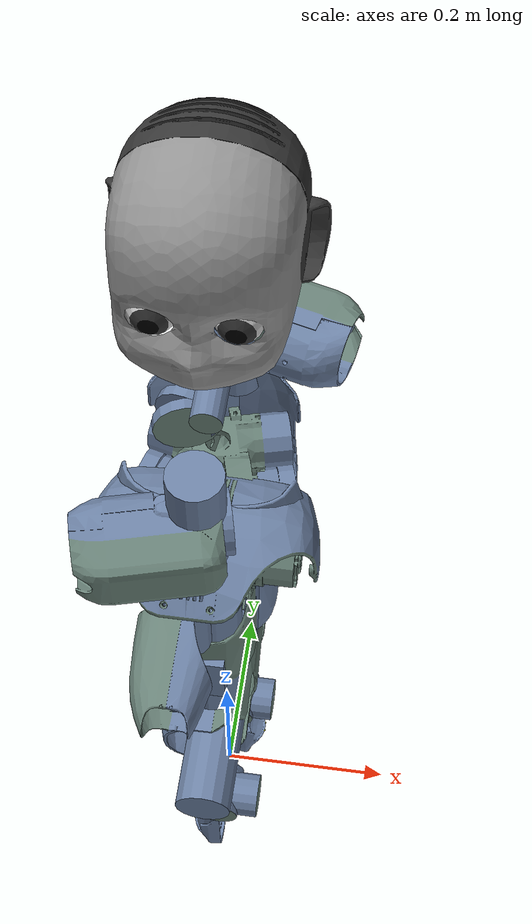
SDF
<sdf version='1.5'>
  <model name='iCub (no FT)'>
    <pose>0 0 0.6 0 0 3.14</pose>
    <link name='root_link'>
      <pose>0 0 0 0 -0 0</pose>
      <inertial>
        <pose>0 0 0 0 -0 0</pose>
        <mass>4.72</mass>
        <inertia>
          <ixx>0.01</ixx>
          <ixy>0</ixy>
          <ixz>0</ixz>
          <iyy>0.01</iyy>
          <iyz>0</iyz>
          <izz>0.01</izz>
        </inertia>
      </inertial>
      <collision name='root_link_collision'>
        <pose>0 0 0 0 -0 0</pose>
        <geometry>
          <mesh>
            <scale>1 1 1</scale>
            <uri>model://icub/meshes/collision/icub_simple_collision_root_link.dae</uri>
          </mesh>
        </geometry>
      </collision>
      <visual name='root_link_visual'>
        <pose>0 0 0 0 -0 0</pose>
        <geometry>
          <mesh>
            <scale>1 1 1</scale>
            <uri>model://icub/meshes/visual/icub_root_link.dae</uri>
          </mesh>
        </geometry>
      </visual>
    </link>
    <link name='l_hip_1'>
      <pose>0 -0.0681 -0.1199 2.65359e-06 1.57079 3.14159</pose>
      <inertial>
        <pose>0 -0.0782 0 0 -0 0</pose>
        <mass>0.754</mass>
        <inertia>
          <ixx>0.01</ixx>
          <ixy>2.059e-06</ixy>
          <ixz>1.451e-06</ixz>
          <iyy>0.01</iyy>
          <iyz>1.545e-06</iyz>
          <izz>0.01</izz>
        </inertia>
      </inertial>
      <collision name='l_hip_1_collision'>
        <pose>0 0 0 -0.785403 1.57079 -2.35619</pose>
        <geometry>
          <mesh>
            <scale>1 1 1</scale>
            <uri>model://icub/meshes/collision/icub_simple_collision_l_hip_1.dae</uri>
          </mesh>
        </geometry>
      </collision>
      <visual name='l_hip_1_visual'>
        <pose>0 0 0 -0.785403 1.57079 -2.35619</pose>
        <geometry>
          <mesh>
            <scale>1 1 1</scale>
            <uri>model://icub/meshes/visual/icub_l_hip_1.dae</uri>
          </mesh>
        </geometry>
      </visual>
    </link>
    <joint name='l_hip_pitch' type='revolute'>
      <child>l_hip_1</child>
      <parent>root_link</parent>
      <axis>
        <xyz>2.65359e-06 1 -9.74718e-12</xyz>
        <limit>
          <lower>-0.767945</lower>
          <upper>2.30383</upper>
          <effort>84</effort>
          <velocity>100</velocity>
        </limit>
        <dynamics>
          <damping>1</damping>
          <friction>0</friction>
          <spring_reference>0</spring_reference>
          <spring_stiffness>0</spring_stiffness>
        </dynamics>
        <use_parent_model_frame>1</use_parent_model_frame>
      </axis>
    </joint>
    <link name='l_hip_2'>
      <pose>0 -0.0681 -0.1199 3.14159 -7.34641e-06 3.14159</pose>
      <inertial>
        <pose>0 0 0.0362088 0 -0 0</pose>
        <mass>0.626</mass>
        <inertia>
          <ixx>0.0201092</ixx>
          <ixy>-7.4e-08</ixy>
          <ixz>1.0835e-05</ixz>
          <iyy>0.0201092</iyy>
          <iyz>-6.2e-08</iyz>
          <izz>0.02</izz>
        </inertia>
      </inertial>
      <collision name='l_hip_2_collision'>
        <pose>0 0 0 0.785363 -1.57079 2.35623</pose>
        <geometry>
          <mesh>
            <scale>1 1 1</scale>
            <uri>model://icub/meshes/collision/icub_simple_collision_l_hip_2.dae</uri>
          </mesh>
        </geometry>
      </collision>
      <visual name='l_hip_2_visual'>
        <pose>0 0 0 0.785363 -1.57079 2.35623</pose>
        <geometry>
          <mesh>
            <scale>1 1 1</scale>
            <uri>model://icub/meshes/visual/icub_l_hip_2.dae</uri>
          </mesh>
        </geometry>
      </visual>
    </link>
    <joint name='l_hip_roll' type='revolute'>
      <child>l_hip_2</child>
      <parent>l_hip_1</parent>
      <axis>
        <xyz>-1 2.65359e-06 7.34641e-06</xyz>
        <limit>
          <lower>-2.07694</lower>
          <upper>0.296706</upper>
          <effort>84</effort>
          <velocity>100</velocity>
        </limit>
        <dynamics>
          <damping>1</damping>
          <friction>0</friction>
          <spring_reference>0</spring_reference>
          <spring_stiffness>0</spring_stiffness>
        </dynamics>
        <use_parent_model_frame>1</use_parent_model_frame>
      </axis>
    </joint>
    <link name='l_upper_leg'>
      <pose>0 -0.0681 -0.1199 1.57079 -7.34641e-06 3.14159</pose>
      <inertial>
        <pose>0.00144 -0.15943 -0.00039 0 -0 0</pose>
        <mass>2.175</mass>
        <inertia>
          <ixx>0.01</ixx>
          <ixy>-6.726e-05</ixy>
          <ixz>2.267e-06</ixz>
          <iyy>0.01</iyy>
          <iyz>3.63726e-05</iyz>
          <izz>0.01</izz>
        </inertia>
      </inertial>
      <collision name='l_upper_leg_collision'>
        <pose>0 0 0 -2.67797 1.57079 -1.10716</pose>
        <geometry>
          <mesh>
            <scale>1 1 1</scale>
            <uri>model://icub/meshes/collision/icub_simple_collision_l_thigh.dae</uri>
          </mesh>
        </geometry>
      </collision>
      <visual name='l_upper_leg_visual'>
        <pose>0 0 0 -2.67797 1.57079 -1.10716</pose>
        <geometry>
          <mesh>
            <scale>1 1 1</scale>
            <uri>model://icub/meshes/visual/icub_l_thigh.dae</uri>
          </mesh>
        </geometry>
      </visual>
    </link>
    <joint name='l_hip_yaw' type='revolute'>
      <child>l_upper_leg</child>
      <parent>l_hip_2</parent>
      <axis>
        <xyz>7.34639e-06 -6.3268e-06 1</xyz>
        <limit>
          <lower>-1.37881</lower>
          <upper>1.37881</upper>
          <effort>40</effort>
          <velocity>100</velocity>
        </limit>
        <dynamics>
          <damping>1</damping>
          <friction>0</friction>
          <spring_reference>0</spring_reference>
          <spring_stiffness>0</spring_stiffness>
        </dynamics>
        <use_parent_model_frame>1</use_parent_model_frame>
      </axis>
    </joint>
    <link name='l_lower_leg'>
      <pose>-1.64265e-06 -0.0680986 -0.3435 2.09198 -1.57078 -0.521189</pose>
      <inertial>
        <pose>-0.1071 0.00182 0.00211 0 -0 0</pose>
        <mass>1.264</mass>
        <inertia>
          <ixx>0.01</ixx>
          <ixy>-0.000185699</ixy>
          <ixz>-6.3147e-05</ixz>
          <iyy>0.01</iyy>
          <iyz>7.86e-07</iyz>
          <izz>0.01</izz>
        </inertia>
      </inertial>
      <collision name='l_lower_leg_collision'>
        <pose>5.55112e-17 2.28232e-12 2.2823e-12 -3.14159 -2.33487e-16 1.5708</pose>
        <geometry>
          <mesh>
            <scale>1 1 1</scale>
            <uri>model://icub/meshes/collision/icub_simple_collision_l_shank.dae</uri>
          </mesh>
        </geometry>
      </collision>
      <visual name='l_lower_leg_visual'>
        <pose>5.55112e-17 2.28232e-12 2.2823e-12 -3.14159 -2.33487e-16 1.5708</pose>
        <geometry>
          <mesh>
            <scale>1 1 1</scale>
            <uri>model://icub/meshes/visual/icub_l_shank.dae</uri>
          </mesh>
        </geometry>
      </visual>
    </link>
    <joint name='l_knee' type='revolute'>
      <child>l_lower_leg</child>
      <parent>l_upper_leg</parent>
      <axis>
        <xyz>5.30723e-06 1 6.32676e-06</xyz>
        <limit>
          <lower>-2.18166</lower>
          <upper>0.401426</upper>
          <effort>30</effort>
          <velocity>100</velocity>
        </limit>
        <dynamics>
          <damping>1</damping>
          <friction>0</friction>
          <spring_reference>0</spring_reference>
          <spring_stiffness>0</spring_stiffness>
        </dynamics>
        <use_parent_model_frame>1</use_parent_model_frame>
      </axis>
    </joint>
    <link name='l_ankle_1'>
      <pose>-3.98983e-06 -0.0680972 -0.5565 0.52118 -1.57078 -0.521189</pose>
      <inertial>
        <pose>-0.0054 0.00163 0.0172 0 -0 0</pose>
        <mass>0.746</mass>
        <inertia>
          <ixx>0.01</ixx>
          <ixy>-7.081e-06</ixy>
          <ixz>4.1421e-05</ixz>
          <iyy>0.01</iyy>
          <iyz>2.0817e-05</iyz>
          <izz>0.01</izz>
        </inertia>
      </inertial>
      <collision name='l_ankle_1_collision'>
        <pose>1.11022e-16 -5.54343e-12 4.45647e-12 1.5708 1.53106e-11 1.53105e-11</pose>
        <geometry>
          <mesh>
            <scale>1 1 1</scale>
            <uri>model://icub/meshes/collision/icub_simple_collision_l_ankle_1.dae</uri>
          </mesh>
        </geometry>
      </collision>
      <visual name='l_ankle_1_visual'>
        <pose>1.11022e-16 -5.54343e-12 4.45647e-12 1.5708 1.53106e-11 1.53105e-11</pose>
        <geometry>
          <mesh>
            <scale>1 1 1</scale>
            <uri>model://icub/meshes/visual/icub_l_ankle_1.dae</uri>
          </mesh>
        </geometry>
      </visual>
    </link>
    <joint name='l_ankle_pitch' type='revolute'>
      <child>l_ankle_1</child>
      <parent>l_lower_leg</parent>
      <axis>
        <xyz>-8.98043e-06 -1 -6.32672e-06</xyz>
        <limit>
          <lower>-0.733038</lower>
          <upper>0.366519</upper>
          <effort>24</effort>
          <velocity>100</velocity>
        </limit>
        <dynamics>
          <damping>1</damping>
          <friction>0</friction>
          <spring_reference>0</spring_reference>
          <spring_stiffness>0</spring_stiffness>
        </dynamics>
        <use_parent_model_frame>1</use_parent_model_frame>
      </axis>
    </joint>
    <link name='l_ankle_2'>
      <pose>-3.98983e-06 -0.0680972 -0.5565 3.14159 -7.34645e-06 3.14158</pose>
      <inertial>
        <pose>0.0165911 -0.000423192 0.0174128 0 -0 0</pose>
        <mass>0.861</mass>
        <inertia>
          <ixx>0.020149</ixx>
          <ixy>-1.79423e-06</ixy>
          <ixz>0.000693896</ixz>
          <iyy>0.0202557</iyy>
          <iyz>-3.87909e-06</iyz>
          <izz>0.0201069</izz>
        </inertia>
      </inertial>
      <collision name='l_ankle_2_collision'>
        <pose>0.03 0 0.026 0 -0 0</pose>
        <geometry>
          <box>
            <size>0.15 0.07 0.03</size>
          </box>
        </geometry>
      </collision>
      <visual name='l_ankle_2_visual'>
        <pose>4.45647e-12 -5.54343e-12 0 -0.785403 1.57079 -0.785403</pose>
        <geometry>
          <mesh>
            <scale>1 1 1</scale>
            <uri>model://icub/meshes/visual/icub_l_foot.dae</uri>
          </mesh>
        </geometry>
      </visual>
    </link>
    <joint name='l_ankle_roll' type='revolute'>
      <child>l_ankle_2</child>
      <parent>l_ankle_1</parent>
      <axis>
        <xyz>-1 8.98038e-06 7.34645e-06</xyz>
        <limit>
          <lower>-0.418879</lower>
          <upper>0.418879</upper>
          <effort>11</effort>
          <velocity>100</velocity>
        </limit>
        <dynamics>
          <damping>1</damping>
          <friction>0</friction>
          <spring_reference>0</spring_reference>
          <spring_stiffness>0</spring_stiffness>
        </dynamics>
        <use_parent_model_frame>1</use_parent_model_frame>
      </axis>
    </joint>
    <link name='r_hip_1'>
      <pose>0 0.0681 -0.1199 3.14159 1.57079 -3.14159</pose>
      <inertial>
        <pose>0 -0.0782 0 0 -0 0</pose>
        <mass>0.754</mass>
        <inertia>
          <ixx>0.01</ixx>
          <ixy>0</ixy>
          <ixz>0</ixz>
          <iyy>0.01</iyy>
          <iyz>0</iyz>
          <izz>0.01</izz>
        </inertia>
      </inertial>
      <collision name='r_hip_1_collision'>
        <pose>0 0 0 1.76819 -1.57079 2.76109</pose>
        <geometry>
          <mesh>
            <scale>1 1 1</scale>
            <uri>model://icub/meshes/collision/icub_simple_collision_r_hip_1.dae</uri>
          </mesh>
        </geometry>
      </collision>
      <visual name='r_hip_1_visual'>
        <pose>0 0 0 1.76819 -1.57079 2.76109</pose>
        <geometry>
          <mesh>
            <scale>1 1 1</scale>
            <uri>model://icub/meshes/visual/icub_r_hip_1.dae</uri>
          </mesh>
        </geometry>
      </visual>
    </link>
    <joint name='r_hip_pitch' type='revolute'>
      <child>r_hip_1</child>
      <parent>root_link</parent>
      <axis>
        <xyz>5.7211e-18 1 -1.22967e-22</xyz>
        <limit>
          <lower>-0.767945</lower>
          <upper>2.30383</upper>
          <effort>84</effort>
          <velocity>100</velocity>
        </limit>
        <dynamics>
          <damping>1</damping>
          <friction>0</friction>
          <spring_reference>0</spring_reference>
          <spring_stiffness>0</spring_stiffness>
        </dynamics>
        <use_parent_model_frame>1</use_parent_model_frame>
      </axis>
    </joint>
    <link name='r_hip_2'>
      <pose>0 0.0681 -0.1199 -3.14159 -7.34641e-06 -3.14159</pose>
      <inertial>
        <pose>0 0 0.0362088 0 -0 0</pose>
        <mass>0.626</mass>
        <inertia>
          <ixx>0.0201092</ixx>
          <ixy>0</ixy>
          <ixz>0</ixz>
          <iyy>0.0201092</iyy>
          <iyz>0</iyz>
          <izz>0.02</izz>
        </inertia>
      </inertial>
      <collision name='r_hip_2_collision'>
        <pose>0 0 0 -2.35627 -1.57079 2.35627</pose>
        <geometry>
          <mesh>
            <scale>1 1 1</scale>
            <uri>model://icub/meshes/collision/icub_simple_collision_r_hip_2.dae</uri>
          </mesh>
        </geometry>
      </collision>
      <visual name='r_hip_2_visual'>
        <pose>0 0 0 -2.35627 -1.57079 2.35627</pose>
        <geometry>
          <mesh>
            <scale>1 1 1</scale>
            <uri>model://icub/meshes/visual/icub_r_hip_2.dae</uri>
          </mesh>
        </geometry>
      </visual>
    </link>
    <joint name='r_hip_roll' type='revolute'>
      <child>r_hip_2</child>
      <parent>r_hip_1</parent>
      <axis>
        <xyz>1 5.55111e-17 -7.34641e-06</xyz>
        <limit>
          <lower>-2.07694</lower>
          <upper>0.296706</upper>
          <effort>84</effort>
          <velocity>100</velocity>
        </limit>
        <dynamics>
          <damping>1</damping>
          <friction>0</friction>
          <spring_reference>0</spring_reference>
          <spring_stiffness>0</spring_stiffness>
        </dynamics>
        <use_parent_model_frame>1</use_parent_model_frame>
      </axis>
    </joint>
    <link name='r_upper_leg'>
      <pose>0 0.0681 -0.1199 1.57079 -7.34641e-06 3.14159</pose>
      <inertial>
        <pose>0.00144 -0.15943 0.00039 0 -0 0</pose>
        <mass>2.175</mass>
        <inertia>
          <ixx>0.01</ixx>
          <ixy>0</ixy>
          <ixz>0</ixz>
          <iyy>0.01</iyy>
          <iyz>-2.71051e-20</iyz>
          <izz>0.01</izz>
        </inertia>
      </inertial>
      <collision name='r_upper_leg_collision'>
        <pose>0 0 0 1.57087 -1.57079 -7.26536e-05</pose>
        <geometry>
          <mesh>
            <scale>1 1 1</scale>
            <uri>model://icub/meshes/collision/icub_simple_collision_r_thigh.dae</uri>
          </mesh>
        </geometry>
      </collision>
      <visual name='r_upper_leg_visual'>
        <pose>0 0 0 1.57087 -1.57079 -7.26536e-05</pose>
        <geometry>
          <mesh>
            <scale>1 1 1</scale>
            <uri>model://icub/meshes/visual/icub_r_thigh.dae</uri>
          </mesh>
        </geometry>
      </visual>
    </link>
    <joint name='r_hip_yaw' type='revolute'>
      <child>r_upper_leg</child>
      <parent>r_hip_2</parent>
      <axis>
        <xyz>-7.34641e-06 3.67321e-06 -1</xyz>
        <limit>
          <lower>-1.37881</lower>
          <upper>1.37881</upper>
          <effort>40</effort>
          <velocity>100</velocity>
        </limit>
        <dynamics>
          <damping>1</damping>
          <friction>0</friction>
          <spring_reference>0</spring_reference>
          <spring_stiffness>0</spring_stiffness>
        </dynamics>
        <use_parent_model_frame>1</use_parent_model_frame>
      </axis>
    </joint>
    <link name='r_lower_leg'>
      <pose>-1.64266e-06 0.0681008 -0.3435 1.89254 -1.57078 -0.321751</pose>
      <inertial>
        <pose>-0.1071 0.00182 -0.00211 0 -0 0</pose>
        <mass>1.264</mass>
        <inertia>
          <ixx>0.01</ixx>
          <ixy>5.42101e-20</ixy>
          <ixz>-5.42101e-20</ixz>
          <iyy>0.01</iyy>
          <iyz>8.47033e-22</iyz>
          <izz>0.01</izz>
        </inertia>
      </inertial>
      <collision name='r_lower_leg_collision'>
        <pose>5.55112e-17 2.28232e-12 -8.32667e-17 3.14159 -1.14426e-17 1.5708</pose>
        <geometry>
          <mesh>
            <scale>1 1 1</scale>
            <uri>model://icub/meshes/collision/icub_simple_collision_r_shank.dae</uri>
          </mesh>
        </geometry>
      </collision>
      <visual name='r_lower_leg_visual'>
        <pose>5.55112e-17 2.28232e-12 -8.32667e-17 3.14159 -1.14426e-17 1.5708</pose>
        <geometry>
          <mesh>
            <scale>1 1 1</scale>
            <uri>model://icub/meshes/visual/icub_r_shank.dae</uri>
          </mesh>
        </geometry>
      </visual>
    </link>
    <joint name='r_knee' type='revolute'>
      <child>r_lower_leg</child>
      <parent>r_upper_leg</parent>
      <axis>
        <xyz>2.65362e-06 1 3.67318e-06</xyz>
        <limit>
          <lower>-2.18166</lower>
          <upper>0.401426</upper>
          <effort>30</effort>
          <velocity>100</velocity>
        </limit>
        <dynamics>
          <damping>1</damping>
          <friction>0</friction>
          <spring_reference>0</spring_reference>
          <spring_stiffness>0</spring_stiffness>
        </dynamics>
        <use_parent_model_frame>1</use_parent_model_frame>
      </axis>
    </joint>
    <link name='r_ankle_1'>
      <pose>-3.98984e-06 0.0681016 -0.5565 -2.81984 -1.57078 -0.321751</pose>
      <inertial>
        <pose>-0.0054 0.00163 -0.0172 0 -0 0</pose>
        <mass>0.746</mass>
        <inertia>
          <ixx>0.01</ixx>
          <ixy>-1.69407e-21</ixy>
          <ixz>1.35525e-20</ixz>
          <iyy>0.01</iyy>
          <iyz>3.38813e-21</iyz>
          <izz>0.01</izz>
        </inertia>
      </inertial>
      <collision name='r_ankle_1_collision'>
        <pose>1.11022e-16 -1.08717e-12 -4.45647e-12 -1.5708 -1.53106e-11 5.10376e-12</pose>
        <geometry>
          <mesh>
            <scale>1 1 1</scale>
            <uri>model://icub/meshes/collision/icub_simple_collision_r_ankle_1.dae</uri>
          </mesh>
        </geometry>
      </collision>
      <visual name='r_ankle_1_visual'>
        <pose>1.11022e-16 -1.08717e-12 -4.45647e-12 -1.5708 -1.53106e-11 5.10376e-12</pose>
        <geometry>
          <mesh>
            <scale>1 1 1</scale>
            <uri>model://icub/meshes/visual/icub_r_ankle_1.dae</uri>
          </mesh>
        </geometry>
      </visual>
    </link>
    <joint name='r_ankle_pitch' type='revolute'>
      <child>r_ankle_1</child>
      <parent>r_lower_leg</parent>
      <axis>
        <xyz>1.01959e-06 -1 -3.67322e-06</xyz>
        <limit>
          <lower>-0.733038</lower>
          <upper>0.366519</upper>
          <effort>24</effort>
          <velocity>100</velocity>
        </limit>
        <dynamics>
          <damping>1</damping>
          <friction>0</friction>
          <spring_reference>0</spring_reference>
          <spring_stiffness>0</spring_stiffness>
        </dynamics>
        <use_parent_model_frame>1</use_parent_model_frame>
      </axis>
    </joint>
    <link name='r_ankle_2'>
      <pose>-3.98984e-06 0.0681016 -0.5565 3.14159 -1.4236e-05 -3.14159</pose>
      <inertial>
        <pose>0.0165911 0.000423192 0.0174128 0 -0 0</pose>
        <mass>0.861</mass>
        <inertia>
          <ixx>0.020149</ixx>
          <ixy>1.79423e-06</ixy>
          <ixz>0.000693895</ixz>
          <iyy>0.0202557</iyy>
          <iyz>3.87927e-06</iyz>
          <izz>0.0201069</izz>
        </inertia>
      </inertial>
      <collision name='r_ankle_2_collision'>
        <pose>0.03 0 0.026 0 -0 0</pose>
        <geometry>
          <box>
            <size>0.15 0.07 0.03</size>
          </box>
        </geometry>
      </collision>
      <visual name='r_ankle_2_visual'>
        <pose>4.45647e-12 1.08717e-12 0 -2.81983 1.57079 0.321763</pose>
        <geometry>
          <mesh>
            <scale>1 1 1</scale>
            <uri>model://icub/meshes/visual/icub_r_foot.dae</uri>
          </mesh>
        </geometry>
      </visual>
    </link>
    <joint name='r_ankle_roll' type='revolute'>
      <child>r_ankle_2</child>
      <parent>r_ankle_1</parent>
      <axis>
        <xyz>1 2.79362e-06 -1.4236e-05</xyz>
        <limit>
          <lower>-0.418879</lower>
          <upper>0.418879</upper>
          <effort>11</effort>
          <velocity>100</velocity>
        </limit>
        <dynamics>
          <damping>1</damping>
          <friction>0</friction>
          <spring_reference>0</spring_reference>
          <spring_stiffness>0</spring_stiffness>
        </dynamics>
        <use_parent_model_frame>1</use_parent_model_frame>
      </axis>
    </joint>
    <link name='torso_1'>
      <pose>0 0 0 3.14159 -1.57079 -2.65359e-06</pose>
      <inertial>
        <pose>0 0 0 0 -0 0</pose>
        <mass>0.1</mass>
        <inertia>
          <ixx>0.01</ixx>
          <ixy>-4.263e-05</ixy>
          <ixz>-3.889e-08</ixz>
          <iyy>0.01</iyy>
          <iyz>0</iyz>
          <izz>0.01</izz>
        </inertia>
      </inertial>
      <collision name='torso_1_collision'>
        <pose>0 0 0 -1.5708 5.10314e-12 1.11022e-16</pose>
        <geometry>
          <mesh>
            <scale>1 1 1</scale>
            <uri>model://icub/meshes/collision/icub_simple_collision_lap_belt_1.dae</uri>
          </mesh>
        </geometry>
      </collision>
      <visual name='torso_1_visual'>
        <pose>0 0 0 -1.5708 5.10314e-12 1.11022e-16</pose>
        <geometry>
          <mesh>
            <scale>1 1 1</scale>
            <uri>model://icub/meshes/visual/icub_lap_belt_1.dae</uri>
          </mesh>
        </geometry>
      </visual>
    </link>
    <joint name='torso_pitch' type='revolute'>
      <child>torso_1</child>
      <parent>root_link</parent>
      <axis>
        <xyz>-2.65359e-06 -1 -1.05879e-22</xyz>
        <limit>
          <lower>-0.383972</lower>
          <upper>1.46608</upper>
          <effort>36</effort>
          <velocity>100</velocity>
        </limit>
        <dynamics>
          <damping>1</damping>
          <friction>0</friction>
          <spring_reference>0</spring_reference>
          <spring_stiffness>0</spring_stiffness>
        </dynamics>
        <use_parent_model_frame>1</use_parent_model_frame>
      </axis>
    </joint>
    <link name='torso_2'>
      <pose>1.17543e-07 -3.1191e-13 0.032 -3.14159 3.67321e-06 1.57079</pose>
      <inertial>
        <pose>0 0 0 0 -0 0</pose>
        <mass>0.1</mass>
        <inertia>
          <ixx>0.01</ixx>
          <ixy>-1.923e-06</ixy>
          <ixz>5.095e-05</ixz>
          <iyy>0.01</iyy>
          <iyz>-3.849e-07</iyz>
          <izz>0.01</izz>
        </inertia>
      </inertial>
    </link>
    <joint name='torso_roll' type='revolute'>
      <child>torso_2</child>
      <parent>torso_1</parent>
      <axis>
        <xyz>1 -2.6536e-06 -7.34641e-06</xyz>
        <limit>
          <lower>-0.680678</lower>
          <upper>0.680678</upper>
          <effort>80</effort>
          <velocity>100</velocity>
        </limit>
        <dynamics>
          <damping>1</damping>
          <friction>0</friction>
          <spring_reference>0</spring_reference>
          <spring_stiffness>0</spring_stiffness>
        </dynamics>
        <use_parent_model_frame>1</use_parent_model_frame>
      </axis>
    </joint>
    <link name='chest'>
      <pose>-0.00549988 1.45945e-08 0.032 1.5708 -7.34642e-06 -3.14159</pose>
      <inertial>
        <pose>0.00222898 0.075 -1.18362e-17 0 -0 0</pose>
        <mass>4.81</mass>
        <inertia>
          <ixx>0.07472</ixx>
          <ixy>-3.6e-06</ixy>
          <ixz>-4.705e-05</ixz>
          <iyy>0.08145</iyy>
          <iyz>0.004567</iyz>
          <izz>0.01306</izz>
        </inertia>
      </inertial>
      <collision name='chest_collision'>
        <pose>-0.0055 -6.93889e-18 -3.55271e-18 -1.10717 -1.57079 2.67798</pose>
        <geometry>
          <mesh>
            <scale>1 1 1</scale>
            <uri>model://icub/meshes/collision/icub_simple_collision_chest.dae</uri>
          </mesh>
        </geometry>
      </collision>
      <visual name='chest_visual'>
        <pose>-0.0055 -6.93889e-18 -3.55271e-18 -1.10717 -1.57079 2.67798</pose>
        <geometry>
          <mesh>
            <scale>1 1 1</scale>
            <uri>model://icub/meshes/visual/icub_chest.dae</uri>
          </mesh>
        </geometry>
      </visual>
    </link>
    <joint name='torso_yaw' type='revolute'>
      <child>chest</child>
      <parent>torso_2</parent>
      <axis>
        <xyz>-7.34642e-06 1.94942e-11 -1</xyz>
        <limit>
          <lower>-1.02974</lower>
          <upper>1.02974</upper>
          <effort>80</effort>
          <velocity>100</velocity>
        </limit>
        <dynamics>
          <damping>1</damping>
          <friction>0</friction>
          <spring_reference>0</spring_reference>
          <spring_stiffness>0</spring_stiffness>
        </dynamics>
        <use_parent_model_frame>1</use_parent_model_frame>
      </axis>
    </joint>
    <link name='l_shoulder_1'>
      <pose>-0.0107487 -0.11026 0.1753 -0.261794 -1.57079 -1.42917e-06</pose>
      <inertial>
        <pose>-5e-06 0.0187 -0.00119 0 -0 0</pose>
        <mass>0.189</mass>
        <inertia>
          <ixx>0.01</ixx>
          <ixy>9e-09</ixy>
          <ixz>0</ixz>
          <iyy>0.01</iyy>
          <iyz>-1.7e-08</iyz>
          <izz>0.01</izz>
        </inertia>
      </inertial>
      <collision name='l_shoulder_1_collision'>
        <pose>3.08642e-14 0.109285 -0.00521101 -0.301063 1.57079 -1.87186</pose>
        <geometry>
          <mesh>
            <scale>1 1 1</scale>
            <uri>model://icub/meshes/collision/icub_simple_collision_l_shoulder_1.dae</uri>
          </mesh>
        </geometry>
      </collision>
      <visual name='l_shoulder_1_visual'>
        <pose>3.08642e-14 0.109285 -0.00521101 -0.301063 1.57079 -1.87186</pose>
        <geometry>
          <mesh>
            <scale>1 1 1</scale>
            <uri>model://icub/meshes/visual/icub_l_shoulder_1.dae</uri>
          </mesh>
        </geometry>
      </visual>
    </link>
    <joint name='l_shoulder_pitch' type='revolute'>
      <child>l_shoulder_1</child>
      <parent>chest</parent>
      <axis>
        <xyz>-0.258815 -0.965927 2.85203e-06</xyz>
        <limit>
          <lower>-1.65806</lower>
          <upper>0.0872665</upper>
          <effort>84</effort>
          <velocity>100</velocity>
        </limit>
        <dynamics>
          <damping>1</damping>
          <friction>0</friction>
          <spring_reference>0</spring_reference>
          <spring_stiffness>0</spring_stiffness>
        </dynamics>
        <use_parent_model_frame>1</use_parent_model_frame>
      </axis>
    </joint>
    <link name='l_shoulder_2'>
      <pose>-0.0107487 -0.11026 0.1753 3.14159 8.21174e-07 -1.83259</pose>
      <inertial>
        <pose>9.4e-05 -0.00627 0.0166 0 -0 0</pose>
        <mass>0.179</mass>
        <inertia>
          <ixx>0.01</ixx>
          <ixy>4.66e-07</ixy>
          <ixz>3.65e-07</ixz>
          <iyy>0.01</iyy>
          <iyz>-2.0524e-05</iyz>
          <izz>0.01</izz>
        </inertia>
      </inertial>
      <collision name='l_shoulder_2_collision'>
        <pose>-0.00154529 -0.00521101 -1.11181e-12 -2.14033 1.57079 -0.569533</pose>
        <geometry>
          <mesh>
            <scale>1 1 1</scale>
            <uri>model://icub/meshes/collision/icub_simple_collision_l_shoulder_2.dae</uri>
          </mesh>
        </geometry>
      </collision>
      <visual name='l_shoulder_2_visual'>
        <pose>-0.00154529 -0.00521101 -1.11181e-12 -2.14033 1.57079 -0.569533</pose>
        <geometry>
          <mesh>
            <scale>1 1 1</scale>
            <uri>model://icub/meshes/visual/icub_l_shoulder_2.dae</uri>
          </mesh>
        </geometry>
      </visual>
    </link>
    <joint name='l_shoulder_roll' type='revolute'>
      <child>l_shoulder_2</child>
      <parent>l_shoulder_1</parent>
      <axis>
        <xyz>-0.965927 0.258815 6.97095e-06</xyz>
        <limit>
          <lower>0</lower>
          <upper>2.80649</upper>
          <effort>84</effort>
          <velocity>100</velocity>
        </limit>
        <dynamics>
          <damping>1</damping>
          <friction>0</friction>
          <spring_reference>0</spring_reference>
          <spring_stiffness>0</spring_stiffness>
        </dynamics>
        <use_parent_model_frame>1</use_parent_model_frame>
      </axis>
    </joint>
    <link name='l_shoulder_3'>
      <pose>-0.0107487 -0.11026 0.1753 3.14159 -6.5209e-06 -3.14159</pose>
      <inertial>
        <pose>0.01321 -6.4e-05 0.08938 0 -0 0</pose>
        <mass>0.884</mass>
        <inertia>
          <ixx>0.0202921</ixx>
          <ixy>-9.03e-07</ixy>
          <ixz>-6.334e-05</ixz>
          <iyy>0.0203031</iyy>
          <iyz>4.031e-06</iyz>
          <izz>0.020011</izz>
        </inertia>
      </inertial>
      <collision name='l_shoulder_3_collision'>
        <pose>-0.0054334 0.000143922 0 1.15274e-11 4.92958e-12 -1.309</pose>
        <geometry>
          <mesh>
            <scale>1 1 1</scale>
            <uri>model://icub/meshes/collision/icub_simple_collision_l_arm.dae</uri>
          </mesh>
        </geometry>
      </collision>
      <visual name='l_shoulder_3_visual'>
        <pose>-0.0054334 0.000143922 0 1.15274e-11 4.92958e-12 -1.309</pose>
        <geometry>
          <mesh>
            <scale>1 1 1</scale>
            <uri>model://icub/meshes/visual/icub_l_arm.dae</uri>
          </mesh>
        </geometry>
      </visual>
    </link>
    <joint name='l_shoulder_yaw' type='revolute'>
      <child>l_shoulder_3</child>
      <parent>l_shoulder_2</parent>
      <axis>
        <xyz>-6.5209e-06 2.59738e-06 -1</xyz>
        <limit>
          <lower>-0.645772</lower>
          <upper>1.74533</upper>
          <effort>34</effort>
          <velocity>100</velocity>
        </limit>
        <dynamics>
          <damping>1</damping>
          <friction>0</friction>
          <spring_reference>0</spring_reference>
          <spring_stiffness>0</spring_stiffness>
        </dynamics>
        <use_parent_model_frame>1</use_parent_model_frame>
      </axis>
    </joint>
    <link name='l_elbow_1'>
      <pose>-0.0257497 -0.11026 0.0230202 3.14159 -6.5209e-06 -3.14159</pose>
      <inertial>
        <pose>-0.0013 0.00371 -0.00105 0 -0 0</pose>
        <mass>0.1</mass>
        <inertia>
          <ixx>0.01</ixx>
          <ixy>-5.15e-07</ixy>
          <ixz>-4.08e-07</ixz>
          <iyy>0.01</iyy>
          <iyz>-3.71e-07</iyz>
          <izz>0.01</izz>
        </inertia>
      </inertial>
    </link>
    <joint name='l_elbow' type='revolute'>
      <child>l_elbow_1</child>
      <parent>l_shoulder_3</parent>
      <axis>
        <xyz>-1.01957e-06 1 2.59739e-06</xyz>
        <limit>
          <lower>0.0959931</lower>
          <upper>1.85005</upper>
          <effort>20</effort>
          <velocity>100</velocity>
        </limit>
        <dynamics>
          <damping>1</damping>
          <friction>0</friction>
          <spring_reference>0</spring_reference>
          <spring_stiffness>0</spring_stiffness>
        </dynamics>
        <use_parent_model_frame>1</use_parent_model_frame>
      </axis>
    </joint>
    <link name='l_forearm'>
      <pose>-0.0107497 -0.11026 0.0230201 -1.5708 2.59741e-06 -1.57079</pose>
      <inertial>
        <pose>0.000347 0.066 0.00476 0 -0 0</pose>
        <mass>0.525</mass>
        <inertia>
          <ixx>0.01</ixx>
          <ixy>4.337e-06</ixy>
          <ixz>2.39e-07</ixz>
          <iyy>0.01</iyy>
          <iyz>1.9381e-05</iyz>
          <izz>0.01</izz>
        </inertia>
      </inertial>
      <collision name='l_forearm_collision'>
        <pose>-0.000143922 -1.25974e-12 0.0204334 -2.66395 1.57079 -1.09315</pose>
        <geometry>
          <mesh>
            <scale>1 1 1</scale>
            <uri>model://icub/meshes/collision/icub_simple_collision_l_forearm.dae</uri>
          </mesh>
        </geometry>
      </collision>
      <visual name='l_forearm_visual'>
        <pose>-0.000143922 -1.25974e-12 0.0204334 -2.66395 1.57079 -1.09315</pose>
        <geometry>
          <mesh>
            <scale>1 1 1</scale>
            <uri>model://icub/meshes/visual/icub_l_forearm.dae</uri>
          </mesh>
        </geometry>
      </visual>
    </link>
    <joint name='l_wrist_prosup' type='revolute'>
      <child>l_forearm</child>
      <parent>l_elbow_1</parent>
      <axis>
        <xyz>-2.8477e-06 2.5974e-06 -1</xyz>
        <limit>
          <lower>-0.872665</lower>
          <upper>0.872665</upper>
          <effort>0.45</effort>
          <velocity>100</velocity>
        </limit>
        <dynamics>
          <damping>1</damping>
          <friction>0</friction>
          <spring_reference>0</spring_reference>
          <spring_stiffness>0</spring_stiffness>
        </dynamics>
        <use_parent_model_frame>1</use_parent_model_frame>
      </axis>
    </joint>
    <link name='l_wrist_1'>
      <pose>-0.0107501 -0.110259 -0.11428 -2.7153 1.57079 1.99709</pose>
      <inertial>
        <pose>0 0 0 0 -0 0</pose>
        <mass>0.1</mass>
        <inertia>
          <ixx>0.01</ixx>
          <ixy>0</ixy>
          <ixz>0</ixz>
          <iyy>0.01</iyy>
          <iyz>0</iyz>
          <izz>0.01</izz>
        </inertia>
      </inertial>
    </link>
    <joint name='l_wrist_pitch' type='revolute'>
      <child>l_wrist_1</child>
      <parent>l_forearm</parent>
      <axis>
        <xyz>1 1.01958e-06 -2.84771e-06</xyz>
        <limit>
          <lower>-1.13446</lower>
          <upper>0.174533</upper>
          <effort>0.65</effort>
          <velocity>100</velocity>
        </limit>
        <dynamics>
          <damping>1</damping>
          <friction>0</friction>
          <spring_reference>0</spring_reference>
          <spring_stiffness>0</spring_stiffness>
        </dynamics>
        <use_parent_model_frame>1</use_parent_model_frame>
      </axis>
    </joint>
    <link name='l_hand'>
      <pose>-0.0107501 -0.110259 -0.11428 -2.7153 1.57079 1.99709</pose>
      <inertial>
        <pose>0.07023 -0.00805 -0.007 0 -0 0</pose>
        <mass>0.213</mass>
        <inertia>
          <ixx>0.01</ixx>
          <ixy>1.278e-05</ixy>
          <ixz>4.823e-06</ixz>
          <iyy>0.01</iyy>
          <iyz>-1.8188e-05</iyz>
          <izz>0.01</izz>
        </inertia>
      </inertial>
      <collision name='l_hand_collision'>
        <pose>-1.25973e-12 0.0204334 -0.000143922 5.10271e-12 -2.64186e-12 1.49622e-11</pose>
        <geometry>
          <mesh>
            <scale>1 1 1</scale>
            <uri>model://icub/meshes/collision/icub_simple_collision_l_hand.dae</uri>
          </mesh>
        </geometry>
      </collision>
      <visual name='l_hand_visual'>
        <pose>-1.25973e-12 0.0204334 -0.000143922 5.10271e-12 -2.64186e-12 1.49622e-11</pose>
        <geometry>
          <mesh>
            <scale>1 1 1</scale>
            <uri>model://icub/meshes/visual/icub_l_hand.dae</uri>
          </mesh>
        </geometry>
      </visual>
    </link>
    <joint name='l_wrist_yaw' type='revolute'>
      <child>l_hand</child>
      <parent>l_wrist_1</parent>
      <axis>
        <xyz>1.01956e-06 -1 -6.27061e-06</xyz>
        <limit>
          <lower>-0.436332</lower>
          <upper>0.436332</upper>
          <effort>0.65</effort>
          <velocity>100</velocity>
        </limit>
        <dynamics>
          <damping>1</damping>
          <friction>0</friction>
          <spring_reference>0</spring_reference>
          <spring_stiffness>0</spring_stiffness>
        </dynamics>
        <use_parent_model_frame>1</use_parent_model_frame>
      </axis>
    </joint>
    <link name='neck_1'>
      <pose>-0.00780846 1.22355e-08 0.2253 6.12199e-06 -1.57079 -1.42918e-06</pose>
      <inertial>
        <pose>0 0 0 0 -0 0</pose>
        <mass>0.1</mass>
        <inertia>
          <ixx>0.01</ixx>
          <ixy>0</ixy>
          <ixz>0</ixz>
          <iyy>0.01</iyy>
          <iyz>0</iyz>
          <izz>0.01</izz>
        </inertia>
      </inertial>
      <collision name='neck_1_collision'>
        <pose>-5.55112e-17 9.62889e-13 -0.0055 3.14159 -1.57079 1.5708</pose>
        <geometry>
          <mesh>
            <scale>1 1 1</scale>
            <uri>model://icub/meshes/collision/icub_simple_collision_neck_1.dae</uri>
          </mesh>
        </geometry>
      </collision>
      <visual name='neck_1_visual'>
        <pose>-5.55112e-17 9.62889e-13 -0.0055 3.14159 -1.57079 1.5708</pose>
        <geometry>
          <mesh>
            <scale>1 1 1</scale>
            <uri>model://icub/meshes/visual/icub_neck_1.dae</uri>
          </mesh>
        </geometry>
      </visual>
    </link>
    <joint name='neck_pitch' type='revolute'>
      <child>neck_1</child>
      <parent>chest</parent>
      <axis>
        <xyz>-4.69281e-06 1 6.74621e-11</xyz>
        <limit>
          <lower>-0.698132</lower>
          <upper>0.523599</upper>
          <effort>20</effort>
          <velocity>100</velocity>
        </limit>
        <dynamics>
          <damping>1</damping>
          <friction>0</friction>
          <spring_reference>0</spring_reference>
          <spring_stiffness>0</spring_stiffness>
        </dynamics>
        <use_parent_model_frame>1</use_parent_model_frame>
      </axis>
    </joint>
    <link name='neck_2'>
      <pose>-0.00780836 1.22353e-08 0.2348 -1.46928e-05 3.67327e-06 -1.57079</pose>
      <inertial>
        <pose>0 0 0 0 -0 0</pose>
        <mass>0.1</mass>
        <inertia>
          <ixx>0.01</ixx>
          <ixy>0</ixy>
          <ixz>0</ixz>
          <iyy>0.01</iyy>
          <iyz>0</iyz>
          <izz>0.01</izz>
        </inertia>
      </inertial>
      <collision name='neck_2_collision'>
        <pose>-9.62885e-13 0.0055 0.0235 -3.14157 -1.57079 -1.57082</pose>
        <geometry>
          <mesh>
            <scale>1 1 1</scale>
            <uri>model://icub/meshes/collision/icub_simple_collision_neck_2.dae</uri>
          </mesh>
        </geometry>
      </collision>
      <visual name='neck_2_visual'>
        <pose>-9.62885e-13 0.0055 0.0235 -3.14157 -1.57079 -1.57082</pose>
        <geometry>
          <mesh>
            <scale>1 1 1</scale>
            <uri>model://icub/meshes/visual/icub_neck_2.dae</uri>
          </mesh>
        </geometry>
      </visual>
    </link>
    <joint name='neck_roll' type='revolute'>
      <child>neck_2</child>
      <parent>neck_1</parent>
      <axis>
        <xyz>-1 -4.69282e-06 1.46928e-05</xyz>
        <limit>
          <lower>-1.22173</lower>
          <upper>1.0472</upper>
          <effort>20</effort>
          <velocity>100</velocity>
        </limit>
        <dynamics>
          <damping>1</damping>
          <friction>0</friction>
          <spring_reference>0</spring_reference>
          <spring_stiffness>0</spring_stiffness>
        </dynamics>
        <use_parent_model_frame>1</use_parent_model_frame>
      </axis>
    </joint>
    <link name='head'>
      <pose>-0.00780836 1.22353e-08 0.2348 -1.5708 1.46928e-05 8.36603e-06</pose>
      <inertial>
        <pose>0.0185 -0.1108 6.78454e-18 0 -0 0</pose>
        <mass>3</mass>
        <inertia>
          <ixx>0.01</ixx>
          <ixy>0</ixy>
          <ixz>0</ixz>
          <iyy>0.01</iyy>
          <iyz>0</iyz>
          <izz>0.01</izz>
        </inertia>
      </inertial>
      <collision name='head_collision'>
        <pose>0.0045 -0.0235 9.42472e-13 -1.32582 1.57079 -2.89662</pose>
        <geometry>
          <mesh>
            <scale>1 1 1</scale>
            <uri>model://icub/meshes/collision/icub_simple_collision_head.dae</uri>
          </mesh>
        </geometry>
      </collision>
      <visual name='head_visual'>
        <pose>0.0045 -0.0235 9.42472e-13 -1.32582 1.57079 -2.89662</pose>
        <geometry>
          <mesh>
            <scale>1 1 1</scale>
            <uri>model://icub/meshes/visual/icub_head.dae</uri>
          </mesh>
        </geometry>
      </visual>
      <sensor name='imu_sensor' type='imu'>
        <always_on>1</always_on>
        <update_rate>100</update_rate>
        <visualize>1</visualize>
        <imu/>
        <plugin name='iCub_yarp_gazebo_plugin_IMU' filename='libgazebo_yarp_imu.so'>
          <yarpConfigurationFile>model://icub/conf/gazebo_icub_inertial.ini</yarpConfigurationFile>
        </plugin>
        <pose>0.0185 -0.1108 0.0066 1.5708 -0 0</pose>
      </sensor>
    </link>
    <joint name='neck_yaw' type='revolute'>
      <child>head</child>
      <parent>neck_2</parent>
      <axis>
        <xyz>1.46928e-05 1.48834e-12 1</xyz>
        <limit>
          <lower>-0.959931</lower>
          <upper>0.959931</upper>
          <effort>20</effort>
          <velocity>100</velocity>
        </limit>
        <dynamics>
          <damping>1</damping>
          <friction>0</friction>
          <spring_reference>0</spring_reference>
          <spring_stiffness>0</spring_stiffness>
        </dynamics>
        <use_parent_model_frame>1</use_parent_model_frame>
      </axis>
    </joint>
    <link name='r_shoulder_1'>
      <pose>-0.0107489 0.11026 0.1753 -2.87979 -1.57079 -1.42916e-06</pose>
      <inertial>
        <pose>5e-06 0.0187 0.00119 0 -0 0</pose>
        <mass>0.189</mass>
        <inertia>
          <ixx>0.01</ixx>
          <ixy>2.1e-08</ixy>
          <ixz>-1e-09</ixz>
          <iyy>0.01</iyy>
          <iyz>4.22e-06</iyz>
          <izz>0.01</izz>
        </inertia>
      </inertial>
      <collision name='r_shoulder_1_collision'>
        <pose>-3.08642e-14 0.109285 0.00521101 3.06003 1.57079 -1.65235</pose>
        <geometry>
          <mesh>
            <scale>1 1 1</scale>
            <uri>model://icub/meshes/collision/icub_simple_collision_r_shoulder_1.dae</uri>
          </mesh>
        </geometry>
      </collision>
      <visual name='r_shoulder_1_visual'>
        <pose>-3.08642e-14 0.109285 0.00521101 3.06003 1.57079 -1.65235</pose>
        <geometry>
          <mesh>
            <scale>1 1 1</scale>
            <uri>model://icub/meshes/visual/icub_r_shoulder_1.dae</uri>
          </mesh>
        </geometry>
      </visual>
    </link>
    <joint name='r_shoulder_pitch' type='revolute'>
      <child>r_shoulder_1</child>
      <parent>chest</parent>
      <axis>
        <xyz>0.258817 -0.965926 -2.85208e-06</xyz>
        <limit>
          <lower>-1.65806</lower>
          <upper>0.0872665</upper>
          <effort>84</effort>
          <velocity>100</velocity>
        </limit>
        <dynamics>
          <damping>1</damping>
          <friction>0</friction>
          <spring_reference>0</spring_reference>
          <spring_stiffness>0</spring_stiffness>
        </dynamics>
        <use_parent_model_frame>1</use_parent_model_frame>
      </axis>
    </joint>
    <link name='r_shoulder_2'>
      <pose>-0.0107489 0.11026 0.1753 6.97094e-06 8.21122e-07 1.83259</pose>
      <inertial>
        <pose>-9.4e-05 -0.00627 -0.0166 0 -0 0</pose>
        <mass>0.179</mass>
        <inertia>
          <ixx>0.01</ixx>
          <ixy>-4.53e-07</ixy>
          <ixz>2.03e-07</ixz>
          <iyy>0.01</iyy>
          <iyz>2.07e-05</iyz>
          <izz>0.01</izz>
        </inertia>
      </inertial>
      <collision name='r_shoulder_2_collision'>
        <pose>-0.00154529 -0.00521101 -1.11181e-12 -1.00125 -1.57079 2.57205</pose>
        <geometry>
          <mesh>
            <scale>1 1 1</scale>
            <uri>model://icub/meshes/collision/icub_simple_collision_r_shoulder_2.dae</uri>
          </mesh>
        </geometry>
      </collision>
      <visual name='r_shoulder_2_visual'>
        <pose>-0.00154529 -0.00521101 -1.11181e-12 -1.00125 -1.57079 2.57205</pose>
        <geometry>
          <mesh>
            <scale>1 1 1</scale>
            <uri>model://icub/meshes/visual/icub_r_shoulder_2.dae</uri>
          </mesh>
        </geometry>
      </visual>
    </link>
    <joint name='r_shoulder_roll' type='revolute'>
      <child>r_shoulder_2</child>
      <parent>r_shoulder_1</parent>
      <axis>
        <xyz>0.965926 0.258817 -6.97094e-06</xyz>
        <limit>
          <lower>0</lower>
          <upper>2.80649</upper>
          <effort>84</effort>
          <velocity>100</velocity>
        </limit>
        <dynamics>
          <damping>1</damping>
          <friction>0</friction>
          <spring_reference>0</spring_reference>
          <spring_stiffness>0</spring_stiffness>
        </dynamics>
        <use_parent_model_frame>1</use_parent_model_frame>
      </axis>
    </joint>
    <link name='r_shoulder_3'>
      <pose>-0.0107489 0.11026 0.1753 3.14159 -6.5209e-06 -3.14159</pose>
      <inertial>
        <pose>0.01321 6.4e-05 0.08938 0 -0 0</pose>
        <mass>0.884</mass>
        <inertia>
          <ixx>0.0203006</ixx>
          <ixy>-8.51e-07</ixy>
          <ixz>-6.39001e-05</ixz>
          <iyy>0.0203116</iyy>
          <iyz>-3.61e-06</iyz>
          <izz>0.0200111</izz>
        </inertia>
      </inertial>
      <collision name='r_shoulder_3_collision'>
        <pose>-0.0054334 -0.000143922 0 -3.14159 -1.51363e-11 1.309</pose>
        <geometry>
          <mesh>
            <scale>1 1 1</scale>
            <uri>model://icub/meshes/collision/icub_simple_collision_r_arm.dae</uri>
          </mesh>
        </geometry>
      </collision>
      <visual name='r_shoulder_3_visual'>
        <pose>-0.0054334 -0.000143922 0 -3.14159 -1.51363e-11 1.309</pose>
        <geometry>
          <mesh>
            <scale>1 1 1</scale>
            <uri>model://icub/meshes/visual/icub_r_arm.dae</uri>
          </mesh>
        </geometry>
      </visual>
    </link>
    <joint name='r_shoulder_yaw' type='revolute'>
      <child>r_shoulder_3</child>
      <parent>r_shoulder_2</parent>
      <axis>
        <xyz>6.5209e-06 -5.62481e-08 1</xyz>
        <limit>
          <lower>-0.645772</lower>
          <upper>1.74533</upper>
          <effort>34</effort>
          <velocity>100</velocity>
        </limit>
        <dynamics>
          <damping>1</damping>
          <friction>0</friction>
          <spring_reference>0</spring_reference>
          <spring_stiffness>0</spring_stiffness>
        </dynamics>
        <use_parent_model_frame>1</use_parent_model_frame>
      </axis>
    </joint>
    <link name='r_elbow_1'>
      <pose>-0.0257499 0.11026 0.0230202 -2.59732e-06 6.5209e-06 3.6732e-06</pose>
      <inertial>
        <pose>0.0013 -0.00371 0.00105 0 -0 0</pose>
        <mass>0.1</mass>
        <inertia>
          <ixx>0.01</ixx>
          <ixy>-5.02e-07</ixy>
          <ixz>-3.99e-07</ixz>
          <iyy>0.01</iyy>
          <iyz>-3.71e-07</iyz>
          <izz>0.01</izz>
        </inertia>
      </inertial>
    </link>
    <joint name='r_elbow' type='revolute'>
      <child>r_elbow_1</child>
      <parent>r_shoulder_3</parent>
      <axis>
        <xyz>-3.67322e-06 1 -2.59732e-06</xyz>
        <limit>
          <lower>0.0959931</lower>
          <upper>1.85005</upper>
          <effort>20</effort>
          <velocity>100</velocity>
        </limit>
        <dynamics>
          <damping>1</damping>
          <friction>0</friction>
          <spring_reference>0</spring_reference>
          <spring_stiffness>0</spring_stiffness>
        </dynamics>
        <use_parent_model_frame>1</use_parent_model_frame>
      </axis>
    </joint>
    <link name='r_forearm'>
      <pose>-0.0107499 0.11026 0.0230201 1.57079 -2.59734e-06 -1.5708</pose>
      <inertial>
        <pose>-0.000347 -0.066 -0.00476 0 -0 0</pose>
        <mass>0.525</mass>
        <inertia>
          <ixx>0.01</ixx>
          <ixy>5.66e-06</ixy>
          <ixz>1.4e-06</ixz>
          <iyy>0.01</iyy>
          <iyz>1.82e-05</iyz>
          <izz>0.01</izz>
        </inertia>
      </inertial>
      <collision name='r_forearm_collision'>
        <pose>0.000143922 -1.07214e-12 -0.0204334 -1.74165 1.57079 -0.170863</pose>
        <geometry>
          <mesh>
            <scale>1 1 1</scale>
            <uri>model://icub/meshes/collision/icub_simple_collision_r_forearm.dae</uri>
          </mesh>
        </geometry>
      </collision>
      <visual name='r_forearm_visual'>
        <pose>0.000143922 -1.07214e-12 -0.0204334 -1.74165 1.57079 -0.170863</pose>
        <geometry>
          <mesh>
            <scale>1 1 1</scale>
            <uri>model://icub/meshes/visual/icub_r_forearm.dae</uri>
          </mesh>
        </geometry>
      </visual>
    </link>
    <joint name='r_wrist_prosup' type='revolute'>
      <child>r_forearm</child>
      <parent>r_elbow_1</parent>
      <axis>
        <xyz>2.84768e-06 2.59734e-06 1</xyz>
        <limit>
          <lower>-0.872665</lower>
          <upper>0.872665</upper>
          <effort>0.45</effort>
          <velocity>100</velocity>
        </limit>
        <dynamics>
          <damping>1</damping>
          <friction>0</friction>
          <spring_reference>0</spring_reference>
          <spring_stiffness>0</spring_stiffness>
        </dynamics>
        <use_parent_model_frame>1</use_parent_model_frame>
      </axis>
    </joint>
    <link name='r_wrist_1'>
      <pose>-0.0107503 0.11026 -0.11428 0.426292 -1.57079 1.14451</pose>
      <inertial>
        <pose>0 0 0 0 -0 0</pose>
        <mass>0.1</mass>
        <inertia>
          <ixx>0.01</ixx>
          <ixy>0</ixy>
          <ixz>0</ixz>
          <iyy>0.01</iyy>
          <iyz>0</iyz>
          <izz>0.01</izz>
        </inertia>
      </inertial>
    </link>
    <joint name='r_wrist_pitch' type='revolute'>
      <child>r_wrist_1</child>
      <parent>r_forearm</parent>
      <axis>
        <xyz>-1 -3.67321e-06 2.84771e-06</xyz>
        <limit>
          <lower>-1.13446</lower>
          <upper>0.174533</upper>
          <effort>0.65</effort>
          <velocity>100</velocity>
        </limit>
        <dynamics>
          <damping>1</damping>
          <friction>0</friction>
          <spring_reference>0</spring_reference>
          <spring_stiffness>0</spring_stiffness>
        </dynamics>
        <use_parent_model_frame>1</use_parent_model_frame>
      </axis>
    </joint>
    <link name='r_hand'>
      <pose>-0.0107503 0.11026 -0.11428 -0.720145 1.57079 -2.29094</pose>
      <inertial>
        <pose>0.07023 -0.00805 0.007 0 -0 0</pose>
        <mass>0.213</mass>
        <inertia>
          <ixx>0.01</ixx>
          <ixy>1.26e-05</ixy>
          <ixz>-6.08e-06</ixz>
          <iyy>0.01</iyy>
          <iyz>1.76e-05</iyz>
          <izz>0.01</izz>
        </inertia>
      </inertial>
      <collision name='r_hand_collision'>
        <pose>1.0721e-12 0.0204334 0.000143922 1.53098e-11 2.00656e-11 -3.14159</pose>
        <geometry>
          <mesh>
            <scale>1 1 1</scale>
            <uri>model://icub/meshes/collision/icub_simple_collision_r_hand.dae</uri>
          </mesh>
        </geometry>
      </collision>
      <visual name='r_hand_visual'>
        <pose>1.0721e-12 0.0204334 0.000143922 1.53098e-11 2.00656e-11 -3.14159</pose>
        <geometry>
          <mesh>
            <scale>1 1 1</scale>
            <uri>model://icub/meshes/visual/icub_r_hand.dae</uri>
          </mesh>
        </geometry>
      </visual>
    </link>
    <joint name='r_wrist_yaw' type='revolute'>
      <child>r_hand</child>
      <parent>r_wrist_1</parent>
      <axis>
        <xyz>3.67323e-06 -1 6.27054e-06</xyz>
        <limit>
          <lower>-0.436332</lower>
          <upper>0.436332</upper>
          <effort>0.65</effort>
          <velocity>100</velocity>
        </limit>
        <dynamics>
          <damping>1</damping>
          <friction>0</friction>
          <spring_reference>0</spring_reference>
          <spring_stiffness>0</spring_stiffness>
        </dynamics>
        <use_parent_model_frame>1</use_parent_model_frame>
      </axis>
    </joint>
    <plugin name='controlboard_torso' filename='libgazebo_yarp_controlboard.so'>
      <yarpConfigurationFile>model://icub/conf/gazebo_icub_torso.ini</yarpConfigurationFile>
    </plugin>
    <plugin name='controlboard_head' filename='libgazebo_yarp_controlboard.so'>
      <yarpConfigurationFile>model://icub/conf/gazebo_icub_head.ini</yarpConfigurationFile>
    </plugin>
    <plugin name='controlboard_left_arm' filename='libgazebo_yarp_controlboard.so'>
      <yarpConfigurationFile>model://icub/conf/gazebo_icub_left_arm.ini</yarpConfigurationFile>
      <initialConfiguration>-0.52 0.52 0 0.785 0 0 0.698</initialConfiguration>
    </plugin>
    <plugin name='controlboard_right_arm' filename='libgazebo_yarp_controlboard.so'>
      <yarpConfigurationFile>model://icub/conf/gazebo_icub_right_arm.ini</yarpConfigurationFile>
      <initialConfiguration>-0.52 0.52 0 0.785 0 0 0.698</initialConfiguration>
    </plugin>
    <plugin name='controlboard_left_leg' filename='libgazebo_yarp_controlboard.so'>
      <yarpConfigurationFile>model://icub/conf/gazebo_icub_left_leg.ini</yarpConfigurationFile>
    </plugin>
    <plugin name='controlboard_right_leg' filename='libgazebo_yarp_controlboard.so'>
      <yarpConfigurationFile>model://icub/conf/gazebo_icub_right_leg.ini</yarpConfigurationFile>
    </plugin>
    <pose>0 0 0.70 0 0 0</pose>
  </model>
</sdf>
